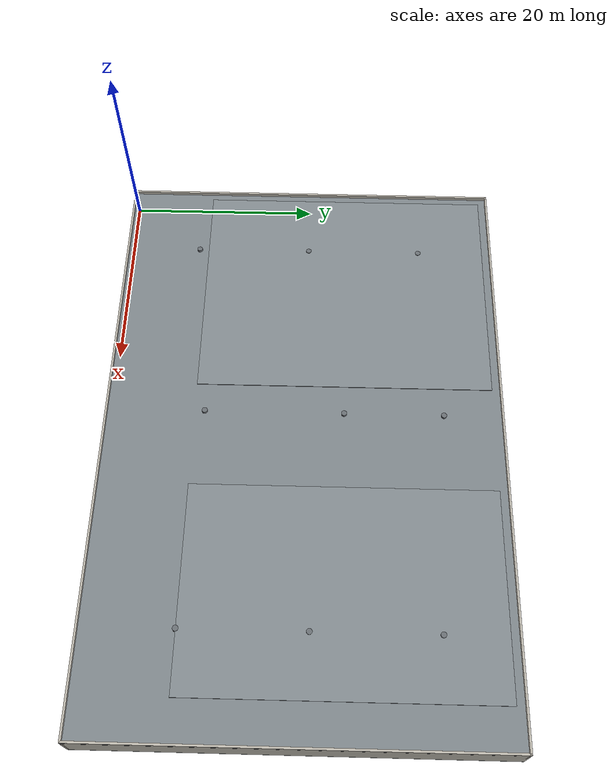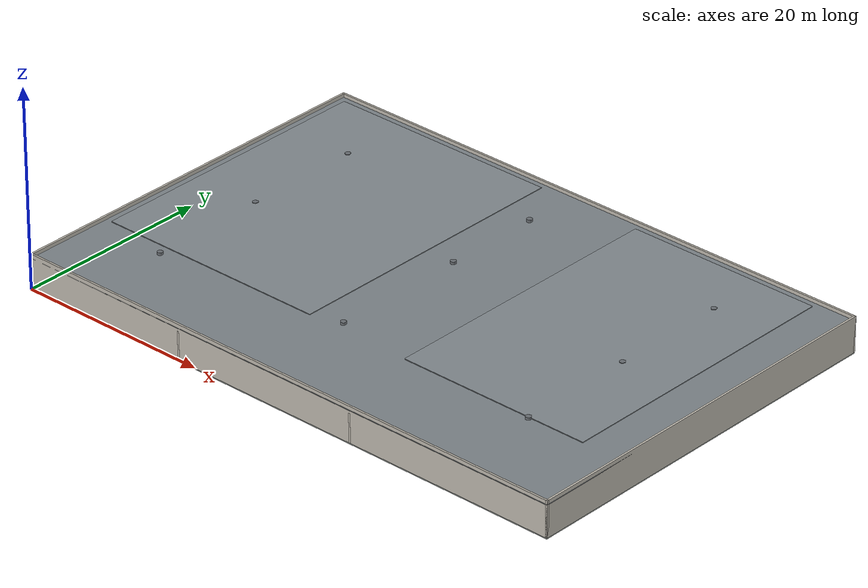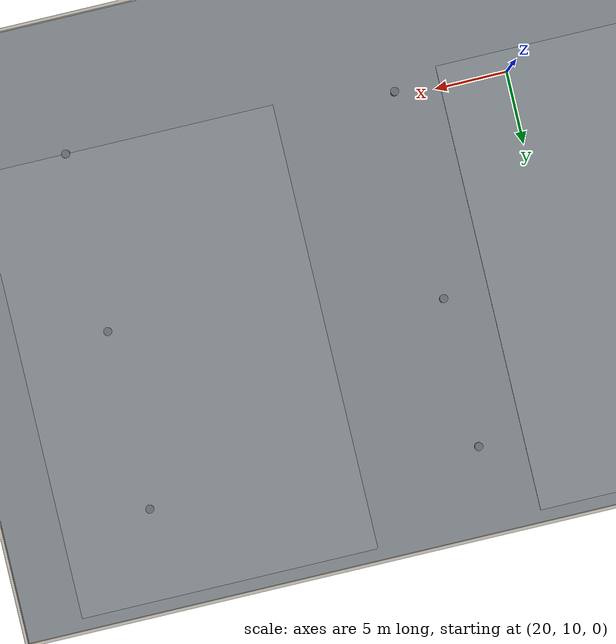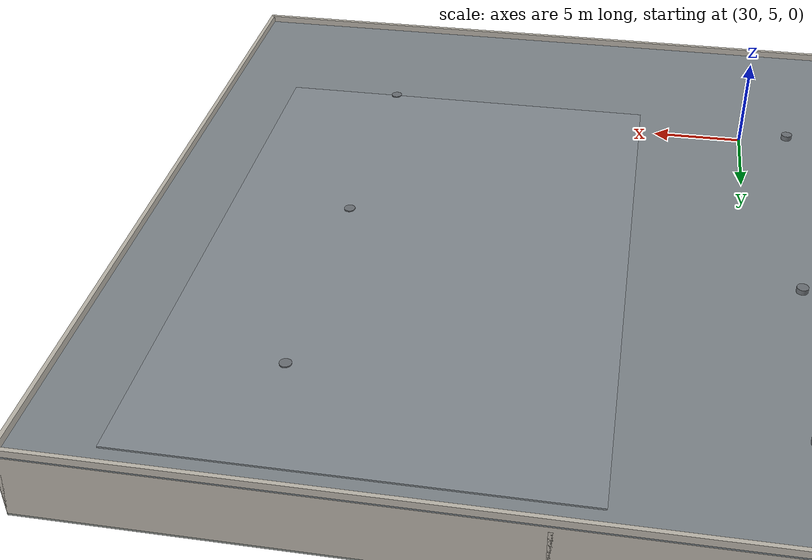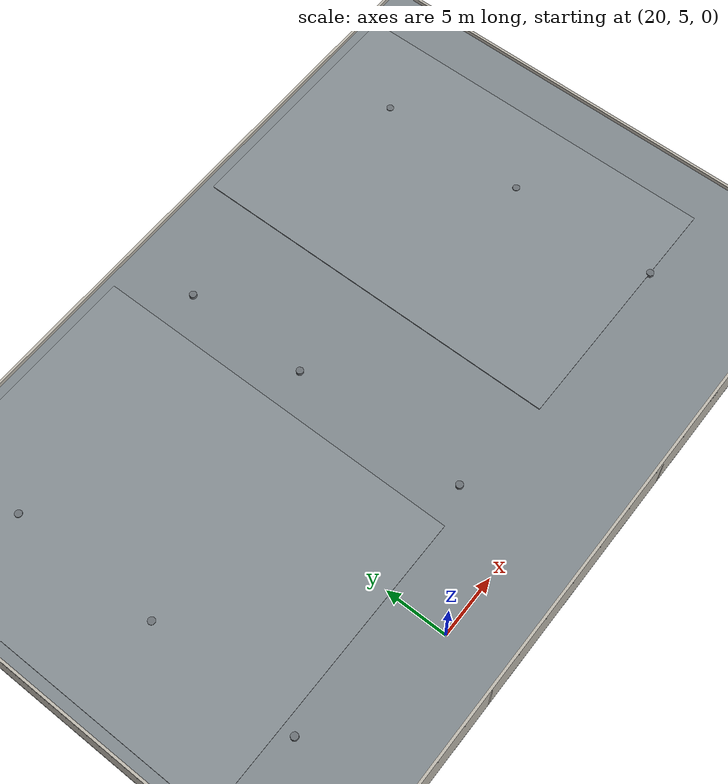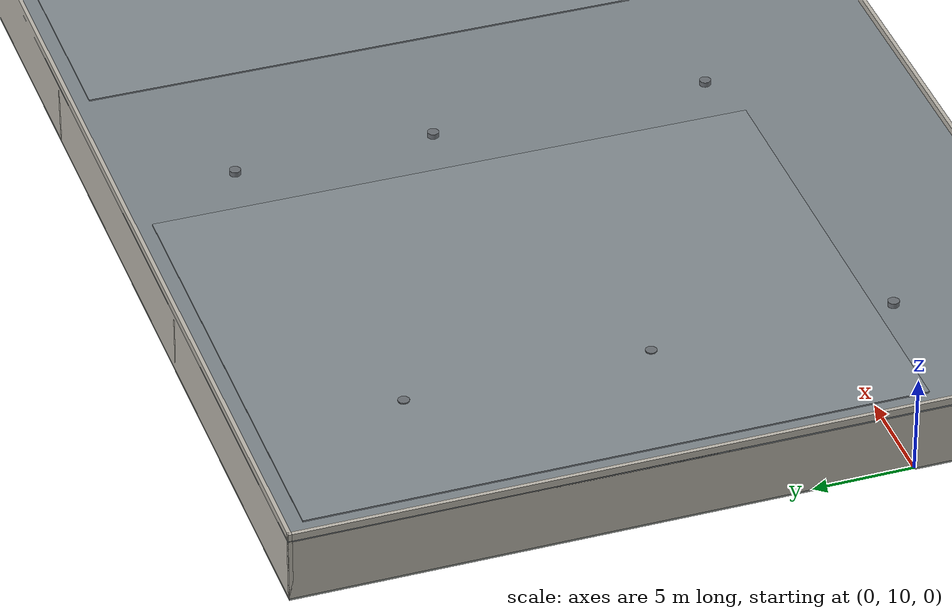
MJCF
<mujoco model="lingtu_industrial_park">
  <compiler angle="radian" autolimits="true"/>
  <option gravity="0 0 -9.81" timestep="0.005" integrator="Euler"
          solver="Newton" iterations="100"/>

  <visual>
    <headlight diffuse="0.65 0.65 0.62" ambient="0.35 0.35 0.35" specular="0.0 0.0 0.0"/>
    <rgba haze="0.12 0.15 0.18 1"/>
    <global azimuth="-42" elevation="-24" fovy="55"/>
  </visual>

  <asset>
    <material name="floor_mat" rgba=".58 .60 .58 1" shininess="0.02" specular="0.04"/>
    <material name="road_mat" rgba=".32 .34 .34 1" shininess="0.02" specular="0.03"/>
    <material name="wall_mat" rgba=".74 .72 .68 1" shininess="0.02" specular="0.05"/>
    <material name="machine_mat" rgba=".25 .38 .46 1" shininess="0.06" specular="0.08"/>
    <material name="shelf_mat" rgba=".46 .34 .22 1" shininess="0.03" specular="0.05"/>
    <material name="barrel_mat" rgba=".72 .58 .12 1" shininess="0.04" specular="0.08"/>
    <material name="container_blue" rgba=".18 .36 .58 1" shininess="0.03" specular="0.05"/>
    <material name="container_orange" rgba=".64 .34 .14 1" shininess="0.03" specular="0.05"/>
    <material name="column_mat" rgba=".42 .44 .46 1" shininess="0.03" specular="0.05"/>
    <material name="robot_mat" rgba=".18 .38 .76 1"/>
    <material name="start_mat" rgba=".15 .78 .28 0.85"/>
    <material name="goal_mat" rgba=".90 .12 .12 0.90"/>
  </asset>

  <worldbody>
    <geom name="ground_main" type="box" pos="30 20 -0.05" size="30 20 0.05"
          material="floor_mat" conaffinity="1" condim="3"/>
    <geom name="road_spine" type="box" pos="30 7 -0.035" size="28 2.0 0.025"
          material="road_mat" conaffinity="1" contype="0"/>
    <geom name="road_cross" type="box" pos="31 22 -0.033" size="2.2 15.5 0.025"
          material="road_mat" conaffinity="1" contype="0"/>

    <!-- Perimeter wall around the industrial park. -->
    <geom name="wall_south" type="box" pos="30 0.10 1.80" size="30 0.10 1.80" material="wall_mat" conaffinity="1"/>
    <geom name="wall_north" type="box" pos="30 39.90 1.80" size="30 0.10 1.80" material="wall_mat" conaffinity="1"/>
    <geom name="wall_west" type="box" pos="0.10 20 1.80" size="0.10 20 1.80" material="wall_mat" conaffinity="1"/>
    <geom name="wall_east" type="box" pos="59.90 20 1.80" size="0.10 20 1.80" material="wall_mat" conaffinity="1"/>

    <geom name="roof_deck_main" type="box" pos="30 20 3.20" size="30 20 0.04"
          rgba=".50 .53 .55 1" conaffinity="1" condim="3"/>
    <geom name="roof_strip_west" type="box" pos="13 24 3.40" size="12 15 0.04"
          rgba=".52 .55 .57 1" conaffinity="1" condim="3"/>
    <geom name="roof_strip_east" type="box" pos="46 24 3.40" size="10 15 0.04"
          rgba=".52 .55 .57 1" conaffinity="1" condim="3"/>
    <geom name="beam_south_a" type="box" pos="12 8 2.60" size="7.0 0.08 0.08"
          material="column_mat" conaffinity="1" condim="3"/>
    <geom name="beam_south_b" type="box" pos="42 8 2.60" size="7.0 0.08 0.08"
          material="column_mat" conaffinity="1" condim="3"/>
    <geom name="beam_north_a" type="box" pos="14 30 2.75" size="7.5 0.08 0.08"
          material="column_mat" conaffinity="1" condim="3"/>
    <geom name="beam_north_b" type="box" pos="45 30 2.75" size="7.5 0.08 0.08"
          material="column_mat" conaffinity="1" condim="3"/>
    <geom name="pipe_run_west" type="cylinder" pos="14 21 2.82" size="0.07 13.0"
          euler="1.5708 0 0" material="column_mat" conaffinity="1" condim="3"/>
    <geom name="pipe_run_center" type="cylinder" pos="31 22 2.88" size="0.06 15.0"
          euler="1.5708 0 0" material="column_mat" conaffinity="1" condim="3"/>
    <geom name="pipe_run_east" type="cylinder" pos="47 22 2.82" size="0.07 13.0"
          euler="1.5708 0 0" material="column_mat" conaffinity="1" condim="3"/>

    <!-- Yard partitions with wide gates. -->
    <geom name="partition_west_low" type="box" pos="18 4.5 1.45" size="0.10 4.5 1.45" material="wall_mat" conaffinity="1"/>
    <geom name="partition_west_high" type="box" pos="18 27.0 1.45" size="0.10 13.0 1.45" material="wall_mat" conaffinity="1"/>
    <geom name="partition_east_low" type="box" pos="38 6.0 1.45" size="0.10 6.0 1.45" material="wall_mat" conaffinity="1"/>
    <geom name="partition_east_high" type="box" pos="38 29.0 1.45" size="0.10 11.0 1.45" material="wall_mat" conaffinity="1"/>
    <geom name="south_yard_barrier_a" type="box" pos="9 13 0.80" size="5.0 0.08 0.80" material="machine_mat" conaffinity="1"/>
    <geom name="south_yard_barrier_b" type="box" pos="50 13 0.80" size="5.0 0.08 0.80" material="machine_mat" conaffinity="1"/>

    <!-- Columns and vertical features break up long planar corridors. -->
    <geom name="col_a1" type="cylinder" pos="8 8 1.75" size="0.28 1.75" material="column_mat" conaffinity="1"/>
    <geom name="col_a2" type="cylinder" pos="8 20 1.75" size="0.28 1.75" material="column_mat" conaffinity="1"/>
    <geom name="col_a3" type="cylinder" pos="8 32 1.75" size="0.28 1.75" material="column_mat" conaffinity="1"/>
    <geom name="col_b1" type="cylinder" pos="28 10 1.75" size="0.28 1.75" material="column_mat" conaffinity="1"/>
    <geom name="col_b2" type="cylinder" pos="28 24 1.75" size="0.28 1.75" material="column_mat" conaffinity="1"/>
    <geom name="col_b3" type="cylinder" pos="28 34 1.75" size="0.28 1.75" material="column_mat" conaffinity="1"/>
    <geom name="col_c1" type="cylinder" pos="50 9 1.75" size="0.28 1.75" material="column_mat" conaffinity="1"/>
    <geom name="col_c2" type="cylinder" pos="50 21 1.75" size="0.28 1.75" material="column_mat" conaffinity="1"/>
    <geom name="col_c3" type="cylinder" pos="50 33 1.75" size="0.28 1.75" material="column_mat" conaffinity="1"/>

    <!-- Start-side service zone. -->
    <geom name="start_guardrail_1" type="box" pos="5.2 6.5 0.85" euler="0 0 0.55"
          size="0.10 1.60 0.85" material="machine_mat" conaffinity="1" condim="3"/>
    <geom name="start_guardrail_2" type="box" pos="8.0 3.0 0.85" euler="0 0 -0.45"
          size="0.10 1.30 0.85" material="machine_mat" conaffinity="1" condim="3"/>
    <geom name="start_crate" type="box" pos="6.2 2.0 0.38" size="0.55 0.60 0.38"
          material="shelf_mat" conaffinity="1" condim="3"/>
    <geom name="start_pump" type="cylinder" pos="11 5.4 0.65" size="0.45 0.65"
          material="machine_mat" conaffinity="1" condim="3"/>

    <!-- Container yard. -->
    <geom name="container_a1" type="box" pos="8 17 1.20" size="2.4 1.10 1.20" material="container_blue" conaffinity="1"/>
    <geom name="container_a2" type="box" pos="8 23 1.20" size="2.4 1.10 1.20" material="container_orange" conaffinity="1"/>
    <geom name="container_a3" type="box" pos="13 28 1.20" size="2.4 1.10 1.20" material="container_blue" conaffinity="1"/>
    <geom name="container_a4" type="box" pos="13 34 1.20" size="2.4 1.10 1.20" material="container_orange" conaffinity="1"/>

    <!-- Central production island. -->
    <geom name="machine_b1" type="box" pos="27 16 0.90" size="1.90 0.95 0.90" material="machine_mat" conaffinity="1" condim="3"/>
    <geom name="machine_b1_top" type="box" pos="27.4 16.2 1.95" size="1.00 0.55 0.38" material="machine_mat" conaffinity="1" condim="3"/>
    <geom name="machine_b2" type="box" pos="32 28 0.85" size="1.10 2.00 0.85" material="machine_mat" conaffinity="1" condim="3"/>
    <geom name="conveyor_b1" type="box" pos="29.5 34 0.62" size="4.00 0.35 0.62" rgba=".18 .18 .18 1" conaffinity="1" condim="3"/>
    <geom name="barrel_b1" type="cylinder" pos="23.5 11.0 0.55" size="0.32 0.55" material="barrel_mat" conaffinity="1" condim="3"/>
    <geom name="barrel_b2" type="cylinder" pos="34.0 12.5 0.55" size="0.32 0.55" material="barrel_mat" conaffinity="1" condim="3"/>
    <geom name="barrel_b3" type="cylinder" pos="35.2 25.0 0.55" size="0.32 0.55" material="barrel_mat" conaffinity="1" condim="3"/>

    <!-- Warehouse and loading side. -->
    <geom name="rack_c1" type="box" pos="45 6 1.10" size="0.45 2.30 1.10" material="shelf_mat" conaffinity="1" condim="3"/>
    <geom name="rack_c2" type="box" pos="53 6 1.10" size="0.45 2.30 1.10" material="shelf_mat" conaffinity="1" condim="3"/>
    <geom name="rack_c3" type="box" pos="45 17 1.10" size="0.45 2.30 1.10" material="shelf_mat" conaffinity="1" condim="3"/>
    <geom name="rack_c4" type="box" pos="53 17 1.10" size="0.45 2.30 1.10" material="shelf_mat" conaffinity="1" condim="3"/>
    <geom name="rack_c5" type="box" pos="45 29 1.10" size="0.45 2.30 1.10" material="shelf_mat" conaffinity="1" condim="3"/>
    <geom name="rack_c6" type="box" pos="53 29 1.10" size="0.45 2.30 1.10" material="shelf_mat" conaffinity="1" condim="3"/>
    <geom name="forklift_body" type="box" pos="48 36 0.45" size="0.85 0.55 0.45" rgba=".90 .62 .05 1" conaffinity="1"/>
    <geom name="forklift_mast" type="box" pos="48.8 36 1.20" size="0.12 0.45 1.20" rgba=".35 .35 .35 1" conaffinity="1"/>
    <geom name="pallet_c1" type="box" pos="55 34 0.18" size="0.90 0.65 0.18" material="shelf_mat" conaffinity="1" condim="3"/>
    <geom name="crate_c1" type="box" pos="55 34 0.68" size="0.70 0.52 0.32" rgba=".55 .42 .28 1" conaffinity="1" condim="3"/>

    <geom name="start_disk" type="cylinder" pos="3.0 4.0 0.01" size="0.70 0.01"
          material="start_mat" conaffinity="0" contype="0"/>
    <geom name="goal_disk" type="cylinder" pos="56.0 32.0 0.01" size="0.70 0.01"
          material="goal_mat" conaffinity="0" contype="0"/>

    <body name="robot_placeholder" pos="3.0 4.0 0.50">
      <freejoint name="robot_root"/>
      <geom name="chassis" type="box" size="0.42 0.28 0.10"
            material="robot_mat" mass="22" conaffinity="1"/>
      <inertial pos="0 0 0" mass="22" diaginertia="0.78 1.18 1.18"/>
    </body>

    <light name="sun" pos="16 -8 24" dir="-.2 .2 -1" diffuse=".75 .75 .70" specular=".08 .08 .08"/>
    <light name="fill_west" pos="10 28 8" dir=".2 -.5 -1" diffuse=".30 .32 .34"/>
    <light name="fill_east" pos="50 18 8" dir="-.5 .1 -1" diffuse=".28 .28 .25"/>
  </worldbody>
</mujoco>
